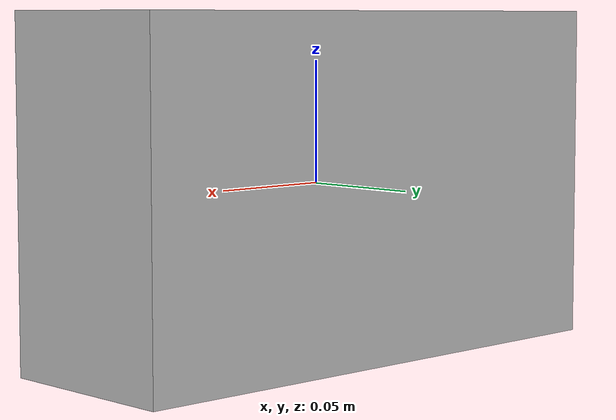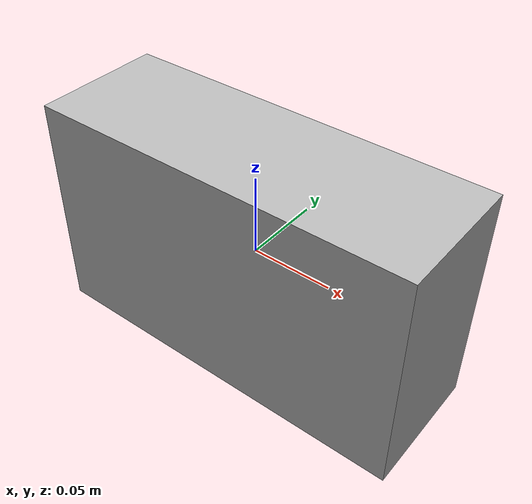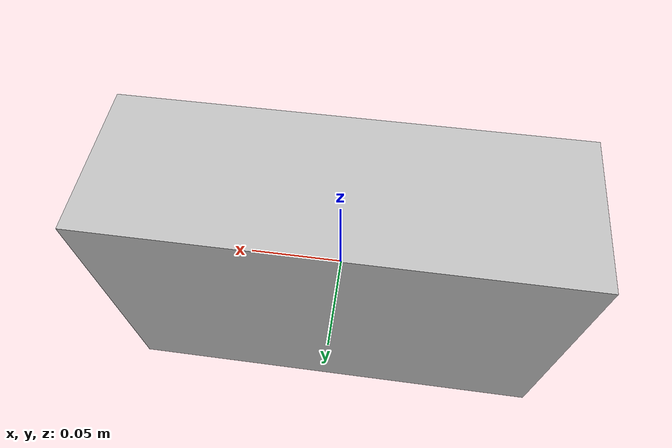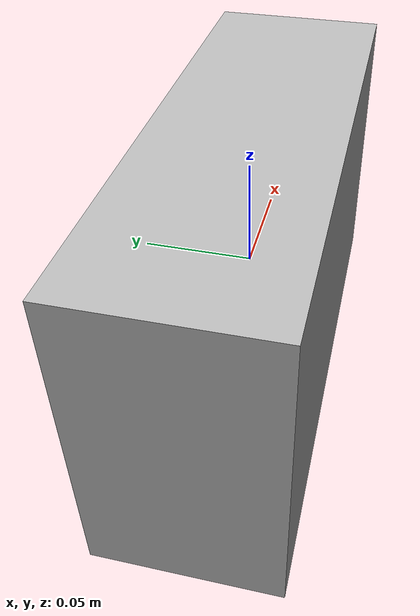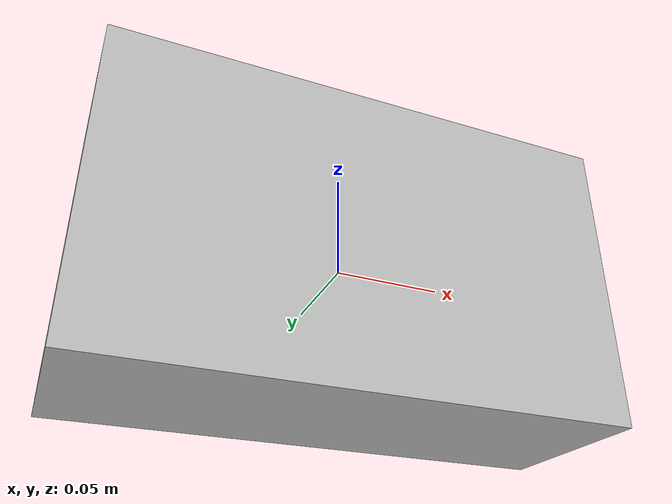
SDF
<?xml version='1.0'?>
<sdf version='1.7'>
  <model name='box_236'>
    <pose>0 0 0 0 0 0</pose>
    <link name='box_link'>
      <pose>0 0 0 0 0 0</pose>
      <inertial>
        <mass>0.3</mass>
        <inertia>
          <ixx>0.000654</ixx>
          <ixy>0</ixy>
          <ixz>0</ixz>
          <iyy>0.001882</iyy>
          <iyz>0</iyz>
          <izz>0.001556</izz>
        </inertia>
      </inertial>
      <visual name='box_visual'>
        <geometry>
          <mesh>
            <uri>model://box/meshes/box.dae</uri>
          </mesh>
        </geometry>
      </visual>
      <collision name='box_collision'>
        <geometry>
          <box>
            <size>0.236 0.081 0.14</size>
          </box>
        </geometry>
        <surface>
          <friction>
            <ode>
              <mu>100.0</mu>
              <mu2>100.0</mu2>
            </ode>
          </friction>
        </surface>
      </collision>
    </link>
  </model>
</sdf>
